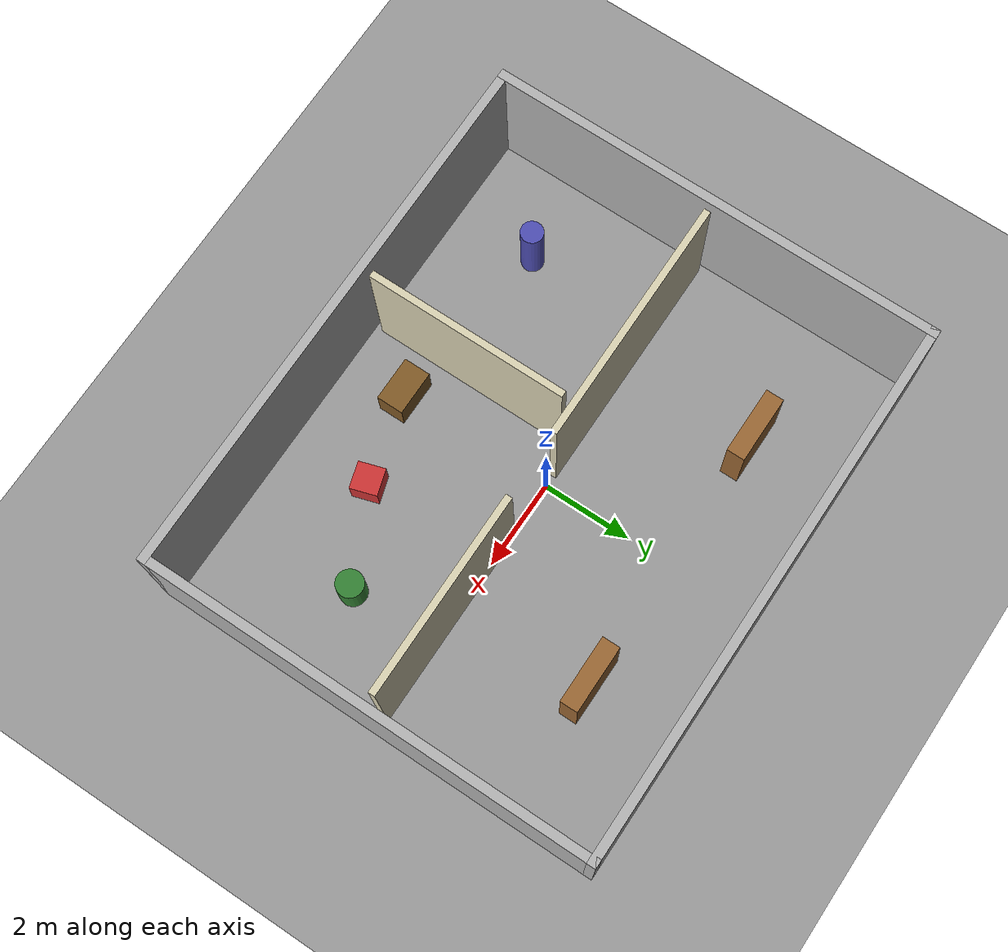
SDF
<?xml version="1.0" ?>
<sdf version="1.9">
  <world name="warehouse">

    <!-- ===== PHYSICS ===== -->
    <physics name="1ms" type="ignored">
      <max_step_size>0.001</max_step_size>
      <real_time_factor>1.0</real_time_factor>
    </physics>

    <!-- ===== REQUIRED WORLD PLUGINS ===== -->
    <plugin filename="gz-sim-physics-system"
            name="gz::sim::systems::Physics"/>
    <plugin filename="gz-sim-user-commands-system"
            name="gz::sim::systems::UserCommands"/>
    <plugin filename="gz-sim-scene-broadcaster-system"
            name="gz::sim::systems::SceneBroadcaster"/>
    <plugin filename="gz-sim-contact-system"
            name="gz::sim::systems::Contact"/>
    <plugin filename="gz-sim-sensors-system"
            name="gz::sim::systems::Sensors">
      <render_engine>ogre2</render_engine>
    </plugin>
    <plugin filename="gz-sim-imu-system"
            name="gz::sim::systems::Imu"/>

    <!-- ===== LIGHTING ===== -->
    <light type="directional" name="sun">
      <cast_shadows>true</cast_shadows>
      <pose>0 0 10 0 0 0</pose>
      <diffuse>0.8 0.8 0.8 1</diffuse>
      <specular>0.2 0.2 0.2 1</specular>
      <attenuation>
        <range>1000</range>
        <constant>0.9</constant>
        <linear>0.01</linear>
        <quadratic>0.001</quadratic>
      </attenuation>
      <direction>-0.5 0.1 -0.9</direction>
    </light>

    <!-- Indoor ceiling light -->
    <light type="point" name="ceiling_light_1">
      <pose>0 0 3.5 0 0 0</pose>
      <diffuse>0.6 0.6 0.6 1</diffuse>
      <specular>0.1 0.1 0.1 1</specular>
      <attenuation>
        <range>20</range>
        <constant>0.5</constant>
        <linear>0.05</linear>
        <quadratic>0.01</quadratic>
      </attenuation>
    </light>

    <!-- ===== GROUND PLANE ===== -->
    <model name="ground_plane">
      <static>true</static>
      <link name="link">
        <collision name="collision">
          <geometry><plane><normal>0 0 1</normal><size>50 50</size></plane></geometry>
        </collision>
        <visual name="visual">
          <geometry><plane><normal>0 0 1</normal><size>50 50</size></plane></geometry>
          <material>
            <ambient>0.6 0.6 0.6 1</ambient>
            <diffuse>0.6 0.6 0.6 1</diffuse>
          </material>
        </visual>
      </link>
    </model>

    <!--                    OUTER WALLS (12m x 10m)                       -->

    <!-- North wall -->
    <model name="wall_north">
      <static>true</static>
      <pose>0 5 1.5 0 0 0</pose>
      <link name="link">
        <collision name="collision">
          <geometry><box><size>12.2 0.2 3.0</size></box></geometry>
        </collision>
        <visual name="visual">
          <geometry><box><size>12.2 0.2 3.0</size></box></geometry>
          <material><ambient>0.7 0.7 0.7 1</ambient><diffuse>0.7 0.7 0.7 1</diffuse></material>
        </visual>
      </link>
    </model>

    <!-- South wall -->
    <model name="wall_south">
      <static>true</static>
      <pose>0 -5 1.5 0 0 0</pose>
      <link name="link">
        <collision name="collision">
          <geometry><box><size>12.2 0.2 3.0</size></box></geometry>
        </collision>
        <visual name="visual">
          <geometry><box><size>12.2 0.2 3.0</size></box></geometry>
          <material><ambient>0.7 0.7 0.7 1</ambient><diffuse>0.7 0.7 0.7 1</diffuse></material>
        </visual>
      </link>
    </model>

    <!-- East wall -->
    <model name="wall_east">
      <static>true</static>
      <pose>6 0 1.5 0 0 1.5707963</pose>
      <link name="link">
        <collision name="collision">
          <geometry><box><size>10.2 0.2 3.0</size></box></geometry>
        </collision>
        <visual name="visual">
          <geometry><box><size>10.2 0.2 3.0</size></box></geometry>
          <material><ambient>0.7 0.7 0.7 1</ambient><diffuse>0.7 0.7 0.7 1</diffuse></material>
        </visual>
      </link>
    </model>

    <!-- West wall -->
    <model name="wall_west">
      <static>true</static>
      <pose>-6 0 1.5 0 0 1.5707963</pose>
      <link name="link">
        <collision name="collision">
          <geometry><box><size>10.2 0.2 3.0</size></box></geometry>
        </collision>
        <visual name="visual">
          <geometry><box><size>10.2 0.2 3.0</size></box></geometry>
          <material><ambient>0.7 0.7 0.7 1</ambient><diffuse>0.7 0.7 0.7 1</diffuse></material>
        </visual>
      </link>
    </model>

    <!--                    INTERIOR WALLS (rooms/corridors)              -->

    <!-- Horizontal divider wall (left part, with doorway gap) -->
    <model name="interior_wall_h1_left">
      <static>true</static>
      <pose>-3.0 0 1.5 0 0 0</pose>
      <link name="link">
        <collision name="collision">
          <geometry><box><size>5.5 0.15 3.0</size></box></geometry>
        </collision>
        <visual name="visual">
          <geometry><box><size>5.5 0.15 3.0</size></box></geometry>
          <material><ambient>0.85 0.82 0.70 1</ambient><diffuse>0.85 0.82 0.70 1</diffuse></material>
        </visual>
      </link>
    </model>

    <!-- Horizontal divider wall (right part, after doorway) -->
    <model name="interior_wall_h1_right">
      <static>true</static>
      <pose>3.5 0 1.5 0 0 0</pose>
      <link name="link">
        <collision name="collision">
          <geometry><box><size>4.5 0.15 3.0</size></box></geometry>
        </collision>
        <visual name="visual">
          <geometry><box><size>4.5 0.15 3.0</size></box></geometry>
          <material><ambient>0.85 0.82 0.70 1</ambient><diffuse>0.85 0.82 0.70 1</diffuse></material>
        </visual>
      </link>
    </model>

    <!-- Vertical wall in south room -->
    <model name="interior_wall_v1">
      <static>true</static>
      <pose>-1 -2.5 1.5 0 0 1.5707963</pose>
      <link name="link">
        <collision name="collision">
          <geometry><box><size>4.5 0.15 3.0</size></box></geometry>
        </collision>
        <visual name="visual">
          <geometry><box><size>4.5 0.15 3.0</size></box></geometry>
          <material><ambient>0.85 0.82 0.70 1</ambient><diffuse>0.85 0.82 0.70 1</diffuse></material>
        </visual>
      </link>
    </model>

    <!--                    OBSTACLES (editable)                          -->

    <!-- Shelf rack 1 -->
    <model name="shelf_1">
      <static>true</static>
      <pose>3 3 0.75 0 0 0</pose>
      <link name="link">
        <collision name="collision">
          <geometry><box><size>1.5 0.4 1.5</size></box></geometry>
        </collision>
        <visual name="visual">
          <geometry><box><size>1.5 0.4 1.5</size></box></geometry>
          <material><ambient>0.6 0.4 0.2 1</ambient><diffuse>0.6 0.4 0.2 1</diffuse></material>
        </visual>
      </link>
    </model>

    <!-- Shelf rack 2 -->
    <model name="shelf_2">
      <static>true</static>
      <pose>-3 3 0.75 0 0 0</pose>
      <link name="link">
        <collision name="collision">
          <geometry><box><size>1.5 0.4 1.5</size></box></geometry>
        </collision>
        <visual name="visual">
          <geometry><box><size>1.5 0.4 1.5</size></box></geometry>
          <material><ambient>0.6 0.4 0.2 1</ambient><diffuse>0.6 0.4 0.2 1</diffuse></material>
        </visual>
      </link>
    </model>

    <!-- Box obstacle -->
    <model name="box_1">
      <static>true</static>
      <pose>2 -3 0.3 0 0 0.3</pose>
      <link name="link">
        <collision name="collision">
          <geometry><box><size>0.6 0.6 0.6</size></box></geometry>
        </collision>
        <visual name="visual">
          <geometry><box><size>0.6 0.6 0.6</size></box></geometry>
          <material><ambient>0.8 0.2 0.2 1</ambient><diffuse>0.8 0.2 0.2 1</diffuse></material>
        </visual>
      </link>
    </model>

    <!-- Pillar -->
    <model name="pillar_1">
      <static>true</static>
      <pose>-4 -3 0.75 0 0 0</pose>
      <link name="link">
        <collision name="collision">
          <geometry><cylinder><radius>0.25</radius><length>1.5</length></cylinder></geometry>
        </collision>
        <visual name="visual">
          <geometry><cylinder><radius>0.25</radius><length>1.5</length></cylinder></geometry>
          <material><ambient>0.3 0.3 0.7 1</ambient><diffuse>0.3 0.3 0.7 1</diffuse></material>
        </visual>
      </link>
    </model>

    <!-- Barrel -->
    <model name="barrel_1">
      <static>true</static>
      <pose>4 -2 0.4 0 0 0</pose>
      <link name="link">
        <collision name="collision">
          <geometry><cylinder><radius>0.3</radius><length>0.8</length></cylinder></geometry>
        </collision>
        <visual name="visual">
          <geometry><cylinder><radius>0.3</radius><length>0.8</length></cylinder></geometry>
          <material><ambient>0.2 0.5 0.2 1</ambient><diffuse>0.2 0.5 0.2 1</diffuse></material>
        </visual>
      </link>
    </model>

    <!-- Table (low obstacle — tests depth camera) -->
    <model name="table_1">
      <static>true</static>
      <pose>0 -3.5 0.35 0 0 0</pose>
      <link name="link">
        <collision name="collision">
          <geometry><box><size>1.0 0.6 0.7</size></box></geometry>
        </collision>
        <visual name="visual">
          <geometry><box><size>1.0 0.6 0.7</size></box></geometry>
          <material><ambient>0.5 0.35 0.15 1</ambient><diffuse>0.5 0.35 0.15 1</diffuse></material>
        </visual>
      </link>
    </model>

  </world>
</sdf>
